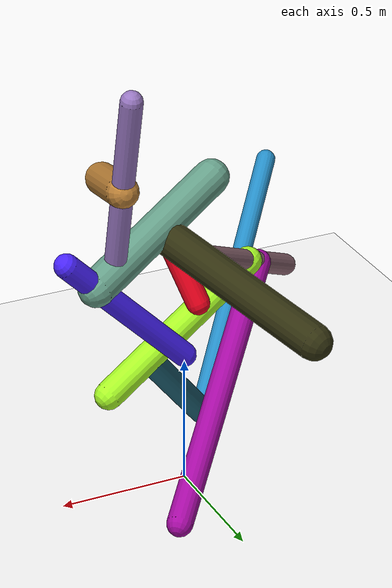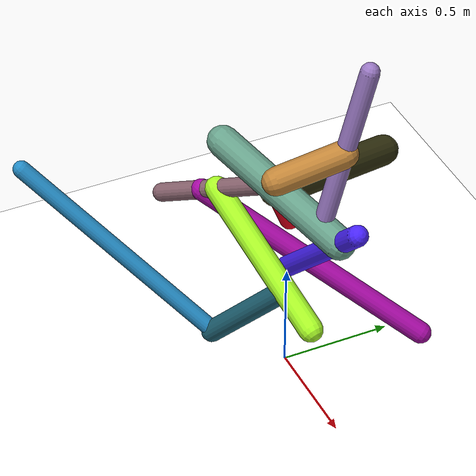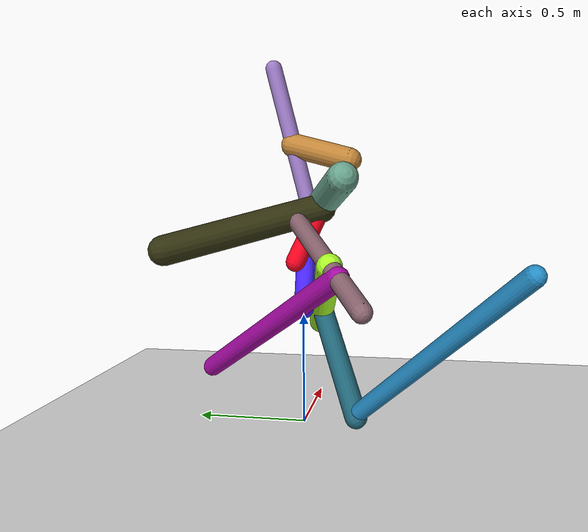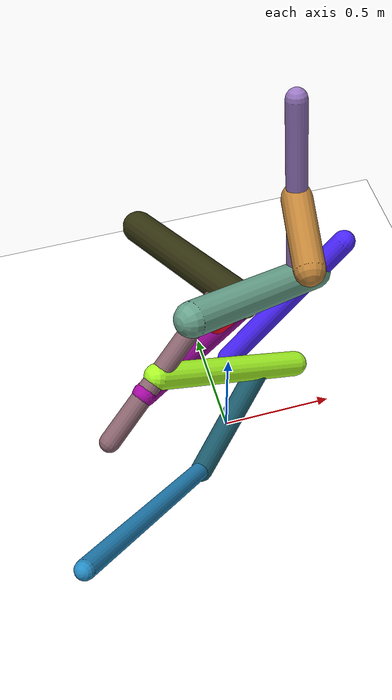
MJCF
<mujoco model="morphology">
  <option timestep="0.01"/>
  <default>
    <default class="/"/>
    <default class="0/"/>
    <default class="0/1/"/>
    <default class="0/1/2/"/>
    <default class="0/1/2/3/"/>
    <default class="0/1/2/3/4/"/>
    <default class="0/1/2/3/4/5/"/>
    <default class="0/1/2/3/4/6/"/>
    <default class="0/1/2/3/4/6/7/"/>
    <default class="0/1/2/3/4/6/7/8/"/>
    <default class="0/1/9/"/>
    <default class="0/1/9/10/"/>
  </default>
  <asset>
    <texture name="texplane" type="2d" builtin="checker" rgb1="0.10000000000000001 0.20000000000000001 0.29999999999999999" rgb2="0.20000000000000001 0.29999999999999999 0.40000000000000002" width="300" height="300"/>
    <material name="MatPlane" class="/" texture="texplane" texrepeat="20 20" specular="1" shininess="1" reflectance="0.5"/>
  </asset>
  <worldbody>
    <light name="//unnamed_light_0" class="/" directional="true" pos="0 0 1.5" dir="0 0 -1.3" cutoff="100" exponent="1" diffuse="1 1 1" specular="0.10000000000000001 0.10000000000000001 0.10000000000000001"/>
    <geom name="ground" class="/" type="plane" size="15 15 0.5" material="MatPlane" rgba="1 1 1 1"/>
    <site name="body" class="/" size="9.9999999999999995e-07 9.9999999999999995e-07 9.9999999999999995e-07" pos="0 0 0.52970940470695493"/>
    <body pos="0 0 0.52970940470695493" name="0/">
      <freejoint name="0/"/>
      <geom name="0/geom" class="0/" type="capsule" contype="1" conaffinity="1" condim="3" size="0.046246325519380488" rgba="0.28641875545735929 0.1414329174087291 0.99053935898598133 1" friction="0.59999999999999998 0.10000000000000001 0.10000000000000001" fromto="0 0 0 0.48927073609387173 0.070577635513471737 0.50483974587459035"/>
      <site name="0/end0" class="0/" size="0.0050000000000000001" pos="0.48927073609387173 0.070577635513471737 0.50483974587459035"/>
      <site name="0/attach1" class="0/" size="9.9999999999999995e-07 9.9999999999999995e-07 9.9999999999999995e-07" pos="0.36909576499486346 0.053242314427682312 0.38084070527292729"/>
      <body pos="0.36909576499486346 0.053242314427682312 0.38084070527292729" name="0/1/">
        <joint name="0/1/joint/" class="0/" type="hinge" axis="0 0 1" limited="true" range="-61.007857593955777 61.007857593955777"/>
        <geom name="0/1/geom" class="0/1/" type="capsule" contype="1" conaffinity="1" condim="3" size="0.068782642409200456" rgba="0.40396732945150227 0.63079727370865568 0.54393355997524573 1" friction="0.59999999999999998 0.10000000000000001 0.10000000000000001" fromto="0 0 0 -0.577609835151357 -0.25903683491972185 0.21611353871174188"/>
        <site name="0/1/end1" class="0/1/" size="0.0050000000000000001" pos="-0.577609835151357 -0.25903683491972185 0.21611353871174188"/>
        <site name="0/1/attach2" class="0/1/" size="9.9999999999999995e-07 9.9999999999999995e-07 9.9999999999999995e-07" pos="-0.32511860192879277 -0.14580377357163773 0.12164358583927844"/>
        <body pos="-0.32511860192879277 -0.14580377357163773 0.12164358583927844" name="0/1/2/">
          <joint name="0/1/2/joint/" class="0/1/" type="hinge" axis="0.50432951367580825 -0.66305353982237258 0.55318328333794053" limited="true" range="-62.566051508984415 62.566051508984415"/>
          <geom name="0/1/2/geom" class="0/1/2/" type="capsule" contype="1" conaffinity="1" condim="3" size="0.044734792039799562" rgba="0.93875347683245858 0.0054521908621439907 0.11431491552606621 1" friction="0.59999999999999998 0.10000000000000001 0.10000000000000001" fromto="0 0 0 -0.086551312096547206 0.12319157192052121 -0.28240602180227703"/>
          <site name="0/1/2/end2" class="0/1/2/" size="0.0050000000000000001" pos="-0.086551312096547206 0.12319157192052121 -0.28240602180227703"/>
          <site name="0/1/2/attach3" class="0/1/2/" size="9.9999999999999995e-07 9.9999999999999995e-07 9.9999999999999995e-07" pos="-0.012723931554820928 0.018110425957482894 -0.041516584844758092"/>
          <body pos="-0.012723931554820928 0.018110425957482894 -0.041516584844758092" name="0/1/2/3/">
            <joint name="0/1/2/3/joint/" class="0/1/2/" type="hinge" axis="-5.5511151231257827e-17 0.91658713579010276 0.39983499409643442" limited="true" range="-40.978541518904748 40.978541518904748"/>
            <geom name="0/1/2/3/geom" class="0/1/2/3/" type="capsule" contype="1" conaffinity="1" condim="3" size="0.068132325054520021" rgba="0.19204171505663548 0.19072893031071103 0.062117484254409105 1" friction="0.59999999999999998 0.10000000000000001 0.10000000000000001" fromto="0 0 0 -0.26540354453371562 0.65245886245415541 -0.17899945566797082"/>
            <site name="0/1/2/3/end3" class="0/1/2/3/" size="0.0050000000000000001" pos="-0.26540354453371562 0.65245886245415541 -0.17899945566797082"/>
            <site name="0/1/2/3/attach4" class="0/1/2/3/" size="9.9999999999999995e-07 9.9999999999999995e-07 9.9999999999999995e-07" pos="-0.048119980200700574 0.11829648921315419 -0.03245416438507559"/>
            <body pos="-0.048119980200700574 0.11829648921315419 -0.03245416438507559" name="0/1/2/3/4/">
              <joint name="0/1/2/3/4/joint/" class="0/1/2/3/" type="hinge" axis="1.3877787807814457e-17 0.26457004907202353 0.96436647034933087" limited="true" range="-50.037357519414499 50.037357519414499"/>
              <geom name="0/1/2/3/4/geom" class="0/1/2/3/4/" type="capsule" contype="1" conaffinity="1" condim="3" size="0.042168342483085104" rgba="0.53220291235263151 0.38477044213948453 0.42793954056072092 1" friction="0.59999999999999998 0.10000000000000001 0.10000000000000001" fromto="0 0 0 -0.56634856603542705 -0.37004661187869486 -0.3295878212822001"/>
              <site name="0/1/2/3/4/end4" class="0/1/2/3/4/" size="0.0050000000000000001" pos="-0.56634856603542705 -0.37004661187869486 -0.3295878212822001"/>
              <site name="0/1/2/3/4/attach5" class="0/1/2/3/4/" size="9.9999999999999995e-07 9.9999999999999995e-07 9.9999999999999995e-07" pos="-0.39395076761619813 -0.25740357713603912 -0.22926053490343087"/>
              <body pos="-0.39395076761619813 -0.25740357713603912 -0.22926053490343087" name="0/1/2/3/4/5/">
                <joint name="0/1/2/3/4/5/joint/" class="0/1/2/3/4/" type="hinge" axis="5.5511151231257827e-17 -0.66510470527555432 0.74675011283582515" limited="true" range="-54.524435301171323 54.524435301171323"/>
                <geom name="0/1/2/3/4/5/geom" class="0/1/2/3/4/5/" type="capsule" contype="1" conaffinity="1" condim="3" size="0.048470961021185394" rgba="0.64673139192450191 0.036845040894887382 0.63792642971038527 1" friction="0.59999999999999998 0.10000000000000001 0.10000000000000001" fromto="0 0 0 0.67691633164677056 0.74307228621971344 -0.56326673393678983"/>
                <site name="0/1/2/3/4/5/end5" class="0/1/2/3/4/5/" size="0.0050000000000000001" pos="0.67691633164677056 0.74307228621971344 -0.56326673393678983"/>
              </body>
              <site name="0/1/2/3/4/attach6" class="0/1/2/3/4/" size="9.9999999999999995e-07 9.9999999999999995e-07 9.9999999999999995e-07" pos="-0.32825590800791971 -0.21447919862817638 -0.1910292636576976"/>
              <body pos="-0.32825590800791971 -0.21447919862817638 -0.1910292636576976" name="0/1/2/3/4/6/">
                <joint name="0/1/2/3/4/6/joint/" class="0/1/2/3/4/" type="hinge" axis="5.5511151231257827e-17 -0.66510470527555432 0.74675011283582515" limited="true" range="-49.149097966947352 49.149097966947352"/>
                <geom name="0/1/2/3/4/6/geom" class="0/1/2/3/4/6/" type="capsule" contype="1" conaffinity="1" condim="3" size="0.054563778030905098" rgba="0.66111433901322647 0.98791304218840947 0.1525777499092793 1" friction="0.59999999999999998 0.10000000000000001 0.10000000000000001" fromto="0 0 0 0.63973277990179134 0.14196364673236994 -0.35554216704673031"/>
                <site name="0/1/2/3/4/6/end6" class="0/1/2/3/4/6/" size="0.0050000000000000001" pos="0.63973277990179134 0.14196364673236994 -0.35554216704673031"/>
                <site name="0/1/2/3/4/6/attach7" class="0/1/2/3/4/6/" size="9.9999999999999995e-07 9.9999999999999995e-07 9.9999999999999995e-07" pos="0.46427159246580674 0.10302690500056719 -0.2580266843741692"/>
                <body pos="0.46427159246580674 0.10302690500056719 -0.2580266843741692" name="0/1/2/3/4/6/7/">
                  <geom name="0/1/2/3/4/6/7/geom" class="0/1/2/3/4/6/7/" type="capsule" contype="1" conaffinity="1" condim="3" size="0.049049646906335835" rgba="0.12165458732555301 0.38975244553766675 0.46123696987062102 1" friction="0.59999999999999998 0.10000000000000001 0.10000000000000001" fromto="0 0 0 -0.31688443694429325 -0.19669280987662141 -0.40916700443120085"/>
                  <site name="0/1/2/3/4/6/7/end7" class="0/1/2/3/4/6/7/" size="0.0050000000000000001" pos="-0.31688443694429325 -0.19669280987662141 -0.40916700443120085"/>
                  <site name="0/1/2/3/4/6/7/attach8" class="0/1/2/3/4/6/7/" size="9.9999999999999995e-07 9.9999999999999995e-07 9.9999999999999995e-07" pos="-0.31079257377993358 -0.19291153966109348 -0.40130107883888783"/>
                  <body pos="-0.31079257377993358 -0.19291153966109348 -0.40130107883888783" name="0/1/2/3/4/6/7/8/">
                    <geom name="0/1/2/3/4/6/7/8/geom" class="0/1/2/3/4/6/7/8/" type="capsule" contype="1" conaffinity="1" condim="3" size="0.038736523783098352" rgba="0.14250659637092866 0.54463017643577205 0.76666271237728545 1" friction="0.59999999999999998 0.10000000000000001 0.10000000000000001" fromto="0 0 0 -0.59581202770762509 -0.64026015527478819 0.69202071217211159"/>
                    <site name="0/1/2/3/4/6/7/8/end8" class="0/1/2/3/4/6/7/8/" size="0.0050000000000000001" pos="-0.59581202770762509 -0.64026015527478819 0.69202071217211159"/>
                  </body>
                </body>
              </body>
            </body>
          </body>
        </body>
        <site name="0/1/attach9" class="0/1/" size="9.9999999999999995e-07 9.9999999999999995e-07 9.9999999999999995e-07" pos="-0.087875124795028695 -0.03940877182105982 0.032878602524510643"/>
        <body pos="-0.087875124795028695 -0.03940877182105982 0.032878602524510643" name="0/1/9/">
          <joint name="0/1/9/joint/" class="0/1/" type="hinge" axis="0.50432951367580825 -0.66305353982237258 0.55318328333794053" limited="true" range="-31.185689230481 31.185689230481"/>
          <geom name="0/1/9/geom" class="0/1/9/" type="capsule" contype="1" conaffinity="1" condim="3" size="0.041285398188552244" rgba="0.59753798495399701 0.46829435215868032 0.75827204090476252 1" friction="0.59999999999999998 0.10000000000000001 0.10000000000000001" fromto="0 0 0 0.0081669819654084375 0.19150352593841147 0.73342215002945288"/>
          <site name="0/1/9/end9" class="0/1/9/" size="0.0050000000000000001" pos="0.0081669819654084375 0.19150352593841147 0.73342215002945288"/>
          <site name="0/1/9/attach10" class="0/1/9/" size="9.9999999999999995e-07 9.9999999999999995e-07 9.9999999999999995e-07" pos="0.0039431713572690838 0.092461477384763194 0.35410990584184732"/>
          <body pos="0.0039431713572690838 0.092461477384763194 0.35410990584184732" name="0/1/9/10/">
            <joint name="0/1/9/10/joint/" class="0/1/9/" type="hinge" axis="-0.99994196317628581 0.0027218326082721345 0.010424102187137851" limited="true" range="-35.189183574724552 35.189183574724552"/>
            <geom name="0/1/9/10/geom" class="0/1/9/10/" type="capsule" contype="1" conaffinity="1" condim="3" size="0.060326595491284628" rgba="0.75210169327812437 0.51772614707072784 0.22196000293971119 1" friction="0.59999999999999998 0.10000000000000001 0.10000000000000001" fromto="0 0 0 -0.042633396458391037 -0.28574101968422999 -0.075299387608472212"/>
            <site name="0/1/9/10/end10" class="0/1/9/10/" size="0.0050000000000000001" pos="-0.042633396458391037 -0.28574101968422999 -0.075299387608472212"/>
          </body>
        </body>
      </body>
      <camera name="0/iso" class="0/" mode="trackcom" pos="-2.2999999999999998 -2.2999999999999998 1" xyaxes="0.45000000000000001 -0.45000000000000001 0 0.29999999999999999 0.14999999999999999 0.93999999999999995"/>
    </body>
  </worldbody>
  <actuator>
    <motor name="0/1/motor" class="0/1/" ctrllimited="true" ctrlrange="-1 1" gear="88" joint="0/1/joint/"/>
    <motor name="0/1/2/motor" class="0/1/2/" ctrllimited="true" ctrlrange="-1 1" gear="73" joint="0/1/2/joint/"/>
    <motor name="0/1/2/3/motor" class="0/1/2/3/" ctrllimited="true" ctrlrange="-1 1" gear="88" joint="0/1/2/3/joint/"/>
    <motor name="0/1/2/3/4/motor" class="0/1/2/3/4/" ctrllimited="true" ctrlrange="-1 1" gear="53" joint="0/1/2/3/4/joint/"/>
    <motor name="0/1/2/3/4/5/motor" class="0/1/2/3/4/5/" ctrllimited="true" ctrlrange="-1 1" gear="71" joint="0/1/2/3/4/5/joint/"/>
    <motor name="0/1/2/3/4/6/motor" class="0/1/2/3/4/6/" ctrllimited="true" ctrlrange="-1 1" gear="57" joint="0/1/2/3/4/6/joint/"/>
    <motor name="0/1/9/motor" class="0/1/9/" ctrllimited="true" ctrlrange="-1 1" gear="63" joint="0/1/9/joint/"/>
    <motor name="0/1/9/10/motor" class="0/1/9/10/" ctrllimited="true" ctrlrange="-1 1" gear="81" joint="0/1/9/10/joint/"/>
  </actuator>
  <sensor>
    <subtreelinvel name="velocity" body="0/"/>
  </sensor>
</mujoco>
